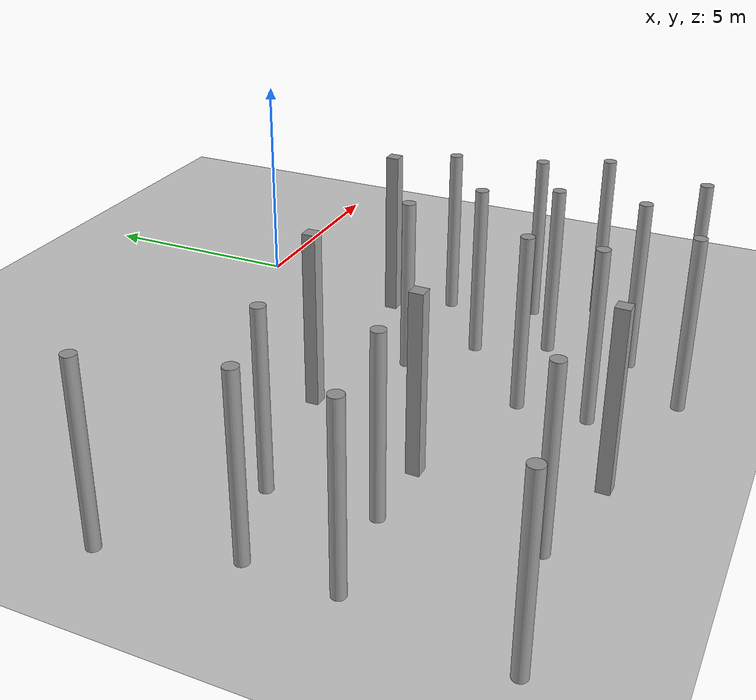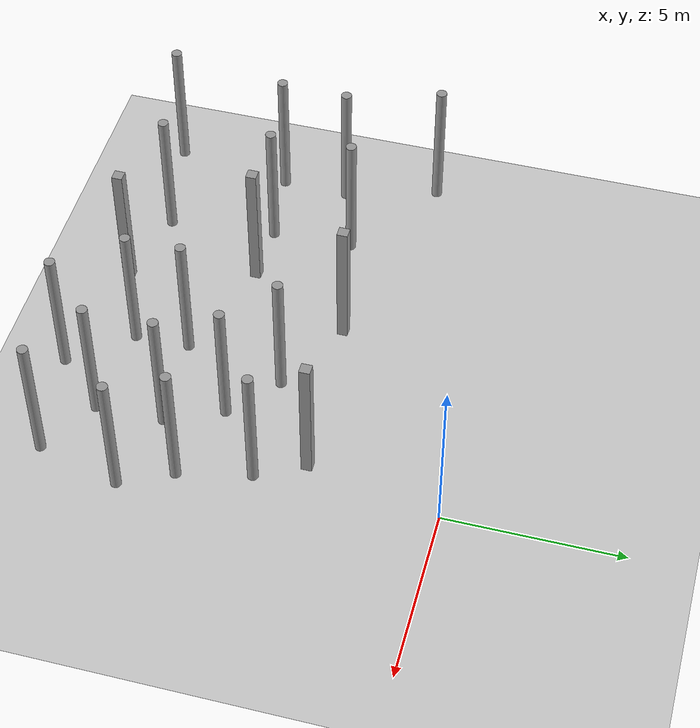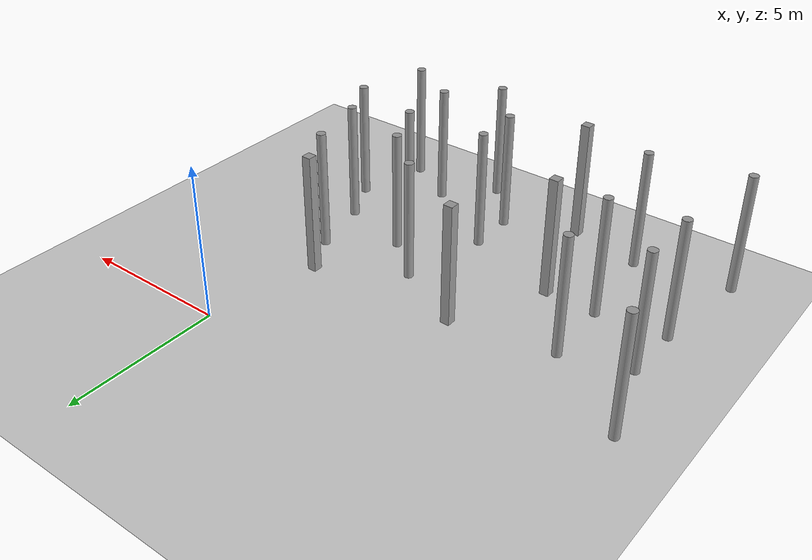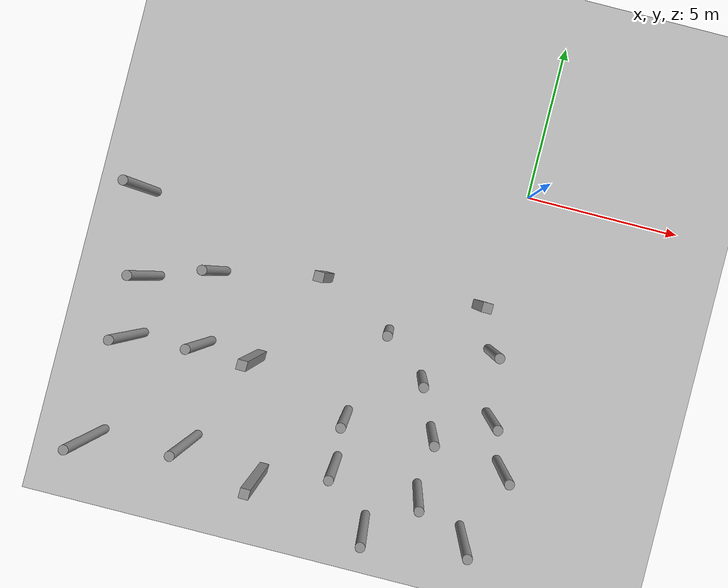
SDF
<sdf version="1.6">
 <world name="default">
  <model name="ground_plane">
   <static>1</static>
   <link name="link">
    <collision name="collision">
     <geometry><plane><normal>0 0 1</normal><size>100 100</size></plane></geometry>
    </collision>
    <visual name="visual">
     <cast_shadows>0</cast_shadows>
     <geometry><plane><normal>0 0 1</normal><size>100 100</size></plane></geometry>
     <material>
      <script><uri>file://media/materials/scripts/gazebo.material</uri><name>Gazebo/Gray</name></script>
     </material>
    </visual>
   </link>
  </model>
  <model name="unit_cylinder_clone_1_clone">
   <link name="link">
    <inertial>
     <mass>1000</mass>
     <inertia><ixx>145.833</ixx><ixy>0</ixy><ixz>0</ixz><iyy>145.833</iyy><iyz>0</iyz><izz>125</izz></inertia>
    </inertial>
    <visual name="visual">
     <geometry><cylinder><radius>0.15</radius><length>4</length></cylinder></geometry>
     <material>
      <script><name>Gazebo/Grey</name><uri>file://media/materials/scripts/gazebo.material</uri></script>
      <shader type="vertex"><normal_map>__default__</normal_map></shader>
      <ambient>0.3 0.3 0.3 1</ambient>
      <diffuse>0.7 0.7 0.7 1</diffuse>
      <specular>0.01 0.01 0.01 1</specular>
      <emissive>0 0 0 1</emissive>
     </material>
    </visual>
    <collision name="collision">
     <geometry><cylinder><radius>0.15</radius><length>4</length></cylinder></geometry>
     <surface>
      <friction>
       <ode><mu>1</mu><mu2>1</mu2><fdir1>0 0 0</fdir1><slip1>0</slip1><slip2>0</slip2></ode>
       <torsional>
        <coefficient>1</coefficient>
        <patch_radius>0</patch_radius>
        <surface_radius>0</surface_radius>
        <use_patch_radius>1</use_patch_radius>
        <ode><slip>0</slip></ode>
       </torsional>
      </friction>
      <bounce><restitution_coefficient>0</restitution_coefficient><threshold>1e+06</threshold></bounce>
      <contact>
       <collide_without_contact>0</collide_without_contact>
       <collide_without_contact_bitmask>1</collide_without_contact_bitmask>
       <collide_bitmask>1</collide_bitmask>
       <ode>
        <soft_cfm>0</soft_cfm>
        <soft_erp>0.2</soft_erp>
        <kp>1e+13</kp>
        <kd>1</kd>
        <max_vel>0.01</max_vel>
        <min_depth>0</min_depth>
       </ode>
       <bullet>
        <split_impulse>1</split_impulse>
        <split_impulse_penetration_threshold>-0.01</split_impulse_penetration_threshold>
        <soft_cfm>0</soft_cfm>
        <soft_erp>0.2</soft_erp>
        <kp>1e+13</kp>
        <kd>1</kd>
       </bullet>
      </contact>
     </surface>
    </collision>
   </link>
   <static>0</static>
   <pose>-1.25133 -8.0211 1.99995 -0.000273 3e-06 -0.782921</pose>
  </model>
  <model name="unit_cylinder_clone_1_clone_1">
   <link name="link">
    <inertial>
     <mass>1000</mass>
     <inertia><ixx>145.833</ixx><ixy>0</ixy><ixz>0</ixz><iyy>145.833</iyy><iyz>0</iyz><izz>125</izz></inertia>
    </inertial>
    <visual name="visual">
     <geometry><cylinder><radius>0.15</radius><length>4</length></cylinder></geometry>
     <material>
      <script><name>Gazebo/Grey</name><uri>file://media/materials/scripts/gazebo.material</uri></script>
      <shader type="vertex"><normal_map>__default__</normal_map></shader>
      <ambient>0.3 0.3 0.3 1</ambient>
      <diffuse>0.7 0.7 0.7 1</diffuse>
      <specular>0.01 0.01 0.01 1</specular>
      <emissive>0 0 0 1</emissive>
     </material>
    </visual>
    <collision name="collision">
     <geometry><cylinder><radius>0.15</radius><length>4</length></cylinder></geometry>
     <surface>
      <friction>
       <ode><mu>1</mu><mu2>1</mu2><fdir1>0 0 0</fdir1><slip1>0</slip1><slip2>0</slip2></ode>
       <torsional>
        <coefficient>1</coefficient>
        <patch_radius>0</patch_radius>
        <surface_radius>0</surface_radius>
        <use_patch_radius>1</use_patch_radius>
        <ode><slip>0</slip></ode>
       </torsional>
      </friction>
      <bounce><restitution_coefficient>0</restitution_coefficient><threshold>1e+06</threshold></bounce>
      <contact>
       <collide_without_contact>0</collide_without_contact>
       <collide_without_contact_bitmask>1</collide_without_contact_bitmask>
       <collide_bitmask>1</collide_bitmask>
       <ode>
        <soft_cfm>0</soft_cfm>
        <soft_erp>0.2</soft_erp>
        <kp>1e+13</kp>
        <kd>1</kd>
        <max_vel>0.01</max_vel>
        <min_depth>0</min_depth>
       </ode>
       <bullet>
        <split_impulse>1</split_impulse>
        <split_impulse_penetration_threshold>-0.01</split_impulse_penetration_threshold>
        <soft_cfm>0</soft_cfm>
        <soft_erp>0.2</soft_erp>
        <kp>1e+13</kp>
        <kd>1</kd>
       </bullet>
      </contact>
     </surface>
    </collision>
   </link>
   <static>0</static>
   <pose>-11.8278 -2.81611 1.99995 -0.000273 1e-06 -0.789222</pose>
  </model>
  <model name="unit_cylinder_clone_1_clone_4">
   <link name="link">
    <inertial>
     <mass>1000</mass>
     <inertia><ixx>145.833</ixx><ixy>0</ixy><ixz>0</ixz><iyy>145.833</iyy><iyz>0</iyz><izz>125</izz></inertia>
    </inertial>
    <visual name="visual">
     <geometry><cylinder><radius>0.15</radius><length>4</length></cylinder></geometry>
     <material>
      <script><name>Gazebo/Grey</name><uri>file://media/materials/scripts/gazebo.material</uri></script>
      <shader type="vertex"><normal_map>__default__</normal_map></shader>
      <ambient>0.3 0.3 0.3 1</ambient>
      <diffuse>0.7 0.7 0.7 1</diffuse>
      <specular>0.01 0.01 0.01 1</specular>
      <emissive>0 0 0 1</emissive>
     </material>
    </visual>
    <collision name="collision">
     <geometry><cylinder><radius>0.15</radius><length>4</length></cylinder></geometry>
     <surface>
      <friction>
       <ode><mu>1</mu><mu2>1</mu2><fdir1>0 0 0</fdir1><slip1>0</slip1><slip2>0</slip2></ode>
       <torsional>
        <coefficient>1</coefficient>
        <patch_radius>0</patch_radius>
        <surface_radius>0</surface_radius>
        <use_patch_radius>1</use_patch_radius>
        <ode><slip>0</slip></ode>
       </torsional>
      </friction>
      <bounce><restitution_coefficient>0</restitution_coefficient><threshold>1e+06</threshold></bounce>
      <contact>
       <collide_without_contact>0</collide_without_contact>
       <collide_without_contact_bitmask>1</collide_without_contact_bitmask>
       <collide_bitmask>1</collide_bitmask>
       <ode>
        <soft_cfm>0</soft_cfm>
        <soft_erp>0.2</soft_erp>
        <kp>1e+13</kp>
        <kd>1</kd>
        <max_vel>0.01</max_vel>
        <min_depth>0</min_depth>
       </ode>
       <bullet>
        <split_impulse>1</split_impulse>
        <split_impulse_penetration_threshold>-0.01</split_impulse_penetration_threshold>
        <soft_cfm>0</soft_cfm>
        <soft_erp>0.2</soft_erp>
        <kp>1e+13</kp>
        <kd>1</kd>
       </bullet>
      </contact>
     </surface>
    </collision>
   </link>
   <static>0</static>
   <pose>-8.98337 -4.76712 1.99995 -0.000273 1e-06 -0.791185</pose>
  </model>
  <model name="unit_cylinder_clone_1_clone_6">
   <link name="link">
    <inertial>
     <mass>1000</mass>
     <inertia><ixx>145.833</ixx><ixy>0</ixy><ixz>0</ixz><iyy>145.833</iyy><iyz>0</iyz><izz>125</izz></inertia>
    </inertial>
    <visual name="visual">
     <geometry><cylinder><radius>0.15</radius><length>4</length></cylinder></geometry>
     <material>
      <script><name>Gazebo/Grey</name><uri>file://media/materials/scripts/gazebo.material</uri></script>
      <shader type="vertex"><normal_map>__default__</normal_map></shader>
      <ambient>0.3 0.3 0.3 1</ambient>
      <diffuse>0.7 0.7 0.7 1</diffuse>
      <specular>0.01 0.01 0.01 1</specular>
      <emissive>0 0 0 1</emissive>
     </material>
    </visual>
    <collision name="collision">
     <geometry><cylinder><radius>0.15</radius><length>4</length></cylinder></geometry>
     <surface>
      <friction>
       <ode><mu>1</mu><mu2>1</mu2><fdir1>0 0 0</fdir1><slip1>0</slip1><slip2>0</slip2></ode>
       <torsional>
        <coefficient>1</coefficient>
        <patch_radius>0</patch_radius>
        <surface_radius>0</surface_radius>
        <use_patch_radius>1</use_patch_radius>
        <ode><slip>0</slip></ode>
       </torsional>
      </friction>
      <bounce><restitution_coefficient>0</restitution_coefficient><threshold>1e+06</threshold></bounce>
      <contact>
       <collide_without_contact>0</collide_without_contact>
       <collide_without_contact_bitmask>1</collide_without_contact_bitmask>
       <collide_bitmask>1</collide_bitmask>
       <ode>
        <soft_cfm>0</soft_cfm>
        <soft_erp>0.2</soft_erp>
        <kp>1e+13</kp>
        <kd>1</kd>
        <max_vel>0.01</max_vel>
        <min_depth>0</min_depth>
       </ode>
       <bullet>
        <split_impulse>1</split_impulse>
        <split_impulse_penetration_threshold>-0.01</split_impulse_penetration_threshold>
        <soft_cfm>0</soft_cfm>
        <soft_erp>0.2</soft_erp>
        <kp>1e+13</kp>
        <kd>1</kd>
       </bullet>
      </contact>
     </surface>
    </collision>
   </link>
   <static>0</static>
   <pose>-3.34529 -5.28367 1.99998 -1e-06 -0 -0.187092</pose>
  </model>
  <model name="unit_cylinder_clone_1_clone_10">
   <link name="link">
    <inertial>
     <mass>1000</mass>
     <inertia><ixx>145.833</ixx><ixy>0</ixy><ixz>0</ixz><iyy>145.833</iyy><iyz>0</iyz><izz>125</izz></inertia>
    </inertial>
    <visual name="visual">
     <geometry><cylinder><radius>0.15</radius><length>4</length></cylinder></geometry>
     <material>
      <script><name>Gazebo/Grey</name><uri>file://media/materials/scripts/gazebo.material</uri></script>
      <shader type="vertex"><normal_map>__default__</normal_map></shader>
      <ambient>0.3 0.3 0.3 1</ambient>
      <diffuse>0.7 0.7 0.7 1</diffuse>
      <specular>0.01 0.01 0.01 1</specular>
      <emissive>0 0 0 1</emissive>
     </material>
    </visual>
    <collision name="collision">
     <geometry><cylinder><radius>0.15</radius><length>4</length></cylinder></geometry>
     <surface>
      <friction>
       <ode><mu>1</mu><mu2>1</mu2><fdir1>0 0 0</fdir1><slip1>0</slip1><slip2>0</slip2></ode>
       <torsional>
        <coefficient>1</coefficient>
        <patch_radius>0</patch_radius>
        <surface_radius>0</surface_radius>
        <use_patch_radius>1</use_patch_radius>
        <ode><slip>0</slip></ode>
       </torsional>
      </friction>
      <bounce><restitution_coefficient>0</restitution_coefficient><threshold>1e+06</threshold></bounce>
      <contact>
       <collide_without_contact>0</collide_without_contact>
       <collide_without_contact_bitmask>1</collide_without_contact_bitmask>
       <collide_bitmask>1</collide_bitmask>
       <ode>
        <soft_cfm>0</soft_cfm>
        <soft_erp>0.2</soft_erp>
        <kp>1e+13</kp>
        <kd>1</kd>
        <max_vel>0.01</max_vel>
        <min_depth>0</min_depth>
       </ode>
       <bullet>
        <split_impulse>1</split_impulse>
        <split_impulse_penetration_threshold>-0.01</split_impulse_penetration_threshold>
        <soft_cfm>0</soft_cfm>
        <soft_erp>0.2</soft_erp>
        <kp>1e+13</kp>
        <kd>1</kd>
       </bullet>
      </contact>
     </surface>
    </collision>
   </link>
   <static>0</static>
   <pose>-0.052579 -5.11156 1.99998 -1e-06 -0 -0.161195</pose>
  </model>
  <model name="unit_cylinder_clone_1_clone_15">
   <link name="link">
    <inertial>
     <mass>1000</mass>
     <inertia><ixx>145.833</ixx><ixy>0</ixy><ixz>0</ixz><iyy>145.833</iyy><iyz>0</iyz><izz>125</izz></inertia>
    </inertial>
    <visual name="visual">
     <geometry><cylinder><radius>0.15</radius><length>4</length></cylinder></geometry>
     <material>
      <script><name>Gazebo/Grey</name><uri>file://media/materials/scripts/gazebo.material</uri></script>
      <shader type="vertex"><normal_map>__default__</normal_map></shader>
      <ambient>0.3 0.3 0.3 1</ambient>
      <diffuse>0.7 0.7 0.7 1</diffuse>
      <specular>0.01 0.01 0.01 1</specular>
      <emissive>0 0 0 1</emissive>
     </material>
    </visual>
    <collision name="collision">
     <geometry><cylinder><radius>0.15</radius><length>4</length></cylinder></geometry>
     <surface>
      <friction>
       <ode><mu>1</mu><mu2>1</mu2><fdir1>0 0 0</fdir1><slip1>0</slip1><slip2>0</slip2></ode>
       <torsional>
        <coefficient>1</coefficient>
        <patch_radius>0</patch_radius>
        <surface_radius>0</surface_radius>
        <use_patch_radius>1</use_patch_radius>
        <ode><slip>0</slip></ode>
       </torsional>
      </friction>
      <bounce><restitution_coefficient>0</restitution_coefficient><threshold>1e+06</threshold></bounce>
      <contact>
       <collide_without_contact>0</collide_without_contact>
       <collide_without_contact_bitmask>1</collide_without_contact_bitmask>
       <collide_bitmask>1</collide_bitmask>
       <ode>
        <soft_cfm>0</soft_cfm>
        <soft_erp>0.2</soft_erp>
        <kp>1e+13</kp>
        <kd>1</kd>
        <max_vel>0.01</max_vel>
        <min_depth>0</min_depth>
       </ode>
       <bullet>
        <split_impulse>1</split_impulse>
        <split_impulse_penetration_threshold>-0.01</split_impulse_penetration_threshold>
        <soft_cfm>0</soft_cfm>
        <soft_erp>0.2</soft_erp>
        <kp>1e+13</kp>
        <kd>1</kd>
       </bullet>
      </contact>
     </surface>
    </collision>
   </link>
   <static>0</static>
   <pose>-11.0913 -7.37751 1.99995 -0.000273 2e-06 -0.786393</pose>
  </model>
  <model name="unit_cylinder_clone_1_clone_16">
   <link name="link">
    <inertial>
     <mass>1000</mass>
     <inertia><ixx>145.833</ixx><ixy>0</ixy><ixz>0</ixz><iyy>145.833</iyy><iyz>0</iyz><izz>125</izz></inertia>
    </inertial>
    <visual name="visual">
     <geometry><cylinder><radius>0.15</radius><length>4</length></cylinder></geometry>
     <material>
      <script><name>Gazebo/Grey</name><uri>file://media/materials/scripts/gazebo.material</uri></script>
      <shader type="vertex"><normal_map>__default__</normal_map></shader>
      <ambient>0.3 0.3 0.3 1</ambient>
      <diffuse>0.7 0.7 0.7 1</diffuse>
      <specular>0.01 0.01 0.01 1</specular>
      <emissive>0 0 0 1</emissive>
     </material>
    </visual>
    <collision name="collision">
     <geometry><cylinder><radius>0.15</radius><length>4</length></cylinder></geometry>
     <surface>
      <friction>
       <ode><mu>1</mu><mu2>1</mu2><fdir1>0 0 0</fdir1><slip1>0</slip1><slip2>0</slip2></ode>
       <torsional>
        <coefficient>1</coefficient>
        <patch_radius>0</patch_radius>
        <surface_radius>0</surface_radius>
        <use_patch_radius>1</use_patch_radius>
        <ode><slip>0</slip></ode>
       </torsional>
      </friction>
      <bounce><restitution_coefficient>0</restitution_coefficient><threshold>1e+06</threshold></bounce>
      <contact>
       <collide_without_contact>0</collide_without_contact>
       <collide_without_contact_bitmask>1</collide_without_contact_bitmask>
       <collide_bitmask>1</collide_bitmask>
       <ode>
        <soft_cfm>0</soft_cfm>
        <soft_erp>0.2</soft_erp>
        <kp>1e+13</kp>
        <kd>1</kd>
        <max_vel>0.01</max_vel>
        <min_depth>0</min_depth>
       </ode>
       <bullet>
        <split_impulse>1</split_impulse>
        <split_impulse_penetration_threshold>-0.01</split_impulse_penetration_threshold>
        <soft_cfm>0</soft_cfm>
        <soft_erp>0.2</soft_erp>
        <kp>1e+13</kp>
        <kd>1</kd>
       </bullet>
      </contact>
     </surface>
    </collision>
   </link>
   <static>0</static>
   <pose>-1.96564 -6.46035 1.99995 -0.000273 2e-06 -0.788121</pose>
  </model>
  <model name="unit_cylinder_clone_1_clone_17">
   <link name="link">
    <inertial>
     <mass>1000</mass>
     <inertia><ixx>145.833</ixx><ixy>0</ixy><ixz>0</ixz><iyy>145.833</iyy><iyz>0</iyz><izz>125</izz></inertia>
    </inertial>
    <visual name="visual">
     <geometry><cylinder><radius>0.15</radius><length>4</length></cylinder></geometry>
     <material>
      <script><name>Gazebo/Grey</name><uri>file://media/materials/scripts/gazebo.material</uri></script>
      <shader type="vertex"><normal_map>__default__</normal_map></shader>
      <ambient>0.3 0.3 0.3 1</ambient>
      <diffuse>0.7 0.7 0.7 1</diffuse>
      <specular>0.01 0.01 0.01 1</specular>
      <emissive>0 0 0 1</emissive>
     </material>
    </visual>
    <collision name="collision">
     <geometry><cylinder><radius>0.15</radius><length>4</length></cylinder></geometry>
     <surface>
      <friction>
       <ode><mu>1</mu><mu2>1</mu2><fdir1>0 0 0</fdir1><slip1>0</slip1><slip2>0</slip2></ode>
       <torsional>
        <coefficient>1</coefficient>
        <patch_radius>0</patch_radius>
        <surface_radius>0</surface_radius>
        <use_patch_radius>1</use_patch_radius>
        <ode><slip>0</slip></ode>
       </torsional>
      </friction>
      <bounce><restitution_coefficient>0</restitution_coefficient><threshold>1e+06</threshold></bounce>
      <contact>
       <collide_without_contact>0</collide_without_contact>
       <collide_without_contact_bitmask>1</collide_without_contact_bitmask>
       <collide_bitmask>1</collide_bitmask>
       <ode>
        <soft_cfm>0</soft_cfm>
        <soft_erp>0.2</soft_erp>
        <kp>1e+13</kp>
        <kd>1</kd>
        <max_vel>0.01</max_vel>
        <min_depth>0</min_depth>
       </ode>
       <bullet>
        <split_impulse>1</split_impulse>
        <split_impulse_penetration_threshold>-0.01</split_impulse_penetration_threshold>
        <soft_cfm>0</soft_cfm>
        <soft_erp>0.2</soft_erp>
        <kp>1e+13</kp>
        <kd>1</kd>
       </bullet>
      </contact>
     </surface>
    </collision>
   </link>
   <static>0</static>
   <pose>-1.21726 -9.94741 1.99995 -0.000273 2e-06 -0.788152</pose>
  </model>
  <model name="unit_cylinder_clone_1_clone_18">
   <link name="link">
    <inertial>
     <mass>1000</mass>
     <inertia><ixx>145.833</ixx><ixy>0</ixy><ixz>0</ixz><iyy>145.833</iyy><iyz>0</iyz><izz>125</izz></inertia>
    </inertial>
    <visual name="visual">
     <geometry><cylinder><radius>0.15</radius><length>4</length></cylinder></geometry>
     <material>
      <script><name>Gazebo/Grey</name><uri>file://media/materials/scripts/gazebo.material</uri></script>
      <shader type="vertex"><normal_map>__default__</normal_map></shader>
      <ambient>0.3 0.3 0.3 1</ambient>
      <diffuse>0.7 0.7 0.7 1</diffuse>
      <specular>0.01 0.01 0.01 1</specular>
      <emissive>0 0 0 1</emissive>
     </material>
    </visual>
    <collision name="collision">
     <geometry><cylinder><radius>0.15</radius><length>4</length></cylinder></geometry>
     <surface>
      <friction>
       <ode><mu>1</mu><mu2>1</mu2><fdir1>0 0 0</fdir1><slip1>0</slip1><slip2>0</slip2></ode>
       <torsional>
        <coefficient>1</coefficient>
        <patch_radius>0</patch_radius>
        <surface_radius>0</surface_radius>
        <use_patch_radius>1</use_patch_radius>
        <ode><slip>0</slip></ode>
       </torsional>
      </friction>
      <bounce><restitution_coefficient>0</restitution_coefficient><threshold>1e+06</threshold></bounce>
      <contact>
       <collide_without_contact>0</collide_without_contact>
       <collide_without_contact_bitmask>1</collide_without_contact_bitmask>
       <collide_bitmask>1</collide_bitmask>
       <ode>
        <soft_cfm>0</soft_cfm>
        <soft_erp>0.2</soft_erp>
        <kp>1e+13</kp>
        <kd>1</kd>
        <max_vel>0.01</max_vel>
        <min_depth>0</min_depth>
       </ode>
       <bullet>
        <split_impulse>1</split_impulse>
        <split_impulse_penetration_threshold>-0.01</split_impulse_penetration_threshold>
        <soft_cfm>0</soft_cfm>
        <soft_erp>0.2</soft_erp>
        <kp>1e+13</kp>
        <kd>1</kd>
       </bullet>
      </contact>
     </surface>
    </collision>
   </link>
   <static>0</static>
   <pose>-11.5625 -10.7603 1.99995 -0.000273 1e-06 -0.790079</pose>
  </model>
  <model name="unit_cylinder_clone_1_clone_19">
   <link name="link">
    <inertial>
     <mass>1000</mass>
     <inertia><ixx>145.833</ixx><ixy>0</ixy><ixz>0</ixz><iyy>145.833</iyy><iyz>0</iyz><izz>125</izz></inertia>
    </inertial>
    <visual name="visual">
     <geometry><cylinder><radius>0.15</radius><length>4</length></cylinder></geometry>
     <material>
      <script><name>Gazebo/Grey</name><uri>file://media/materials/scripts/gazebo.material</uri></script>
      <shader type="vertex"><normal_map>__default__</normal_map></shader>
      <ambient>0.3 0.3 0.3 1</ambient>
      <diffuse>0.7 0.7 0.7 1</diffuse>
      <specular>0.01 0.01 0.01 1</specular>
      <emissive>0 0 0 1</emissive>
     </material>
    </visual>
    <collision name="collision">
     <geometry><cylinder><radius>0.15</radius><length>4</length></cylinder></geometry>
     <surface>
      <friction>
       <ode><mu>1</mu><mu2>1</mu2><fdir1>0 0 0</fdir1><slip1>0</slip1><slip2>0</slip2></ode>
       <torsional>
        <coefficient>1</coefficient>
        <patch_radius>0</patch_radius>
        <surface_radius>0</surface_radius>
        <use_patch_radius>1</use_patch_radius>
        <ode><slip>0</slip></ode>
       </torsional>
      </friction>
      <bounce><restitution_coefficient>0</restitution_coefficient><threshold>1e+06</threshold></bounce>
      <contact>
       <collide_without_contact>0</collide_without_contact>
       <collide_without_contact_bitmask>1</collide_without_contact_bitmask>
       <collide_bitmask>1</collide_bitmask>
       <ode>
        <soft_cfm>0</soft_cfm>
        <soft_erp>0.2</soft_erp>
        <kp>1e+13</kp>
        <kd>1</kd>
        <max_vel>0.01</max_vel>
        <min_depth>0</min_depth>
       </ode>
       <bullet>
        <split_impulse>1</split_impulse>
        <split_impulse_penetration_threshold>-0.01</split_impulse_penetration_threshold>
        <soft_cfm>0</soft_cfm>
        <soft_erp>0.2</soft_erp>
        <kp>1e+13</kp>
        <kd>1</kd>
       </bullet>
      </contact>
     </surface>
    </collision>
   </link>
   <static>0</static>
   <pose>1.11239 -8.55759 1.99995 -0.000273 2e-06 -0.787119</pose>
  </model>
  <model name="unit_cylinder_clone_1_clone_20">
   <link name="link">
    <inertial>
     <mass>1000</mass>
     <inertia><ixx>145.833</ixx><ixy>0</ixy><ixz>0</ixz><iyy>145.833</iyy><iyz>0</iyz><izz>125</izz></inertia>
    </inertial>
    <visual name="visual">
     <geometry><cylinder><radius>0.15</radius><length>4</length></cylinder></geometry>
     <material>
      <script><name>Gazebo/Grey</name><uri>file://media/materials/scripts/gazebo.material</uri></script>
      <shader type="vertex"><normal_map>__default__</normal_map></shader>
      <ambient>0.3 0.3 0.3 1</ambient>
      <diffuse>0.7 0.7 0.7 1</diffuse>
      <specular>0.01 0.01 0.01 1</specular>
      <emissive>0 0 0 1</emissive>
     </material>
    </visual>
    <collision name="collision">
     <geometry><cylinder><radius>0.15</radius><length>4</length></cylinder></geometry>
     <surface>
      <friction>
       <ode><mu>1</mu><mu2>1</mu2><fdir1>0 0 0</fdir1><slip1>0</slip1><slip2>0</slip2></ode>
       <torsional>
        <coefficient>1</coefficient>
        <patch_radius>0</patch_radius>
        <surface_radius>0</surface_radius>
        <use_patch_radius>1</use_patch_radius>
        <ode><slip>0</slip></ode>
       </torsional>
      </friction>
      <bounce><restitution_coefficient>0</restitution_coefficient><threshold>1e+06</threshold></bounce>
      <contact>
       <collide_without_contact>0</collide_without_contact>
       <collide_without_contact_bitmask>1</collide_without_contact_bitmask>
       <collide_bitmask>1</collide_bitmask>
       <ode>
        <soft_cfm>0</soft_cfm>
        <soft_erp>0.2</soft_erp>
        <kp>1e+13</kp>
        <kd>1</kd>
        <max_vel>0.01</max_vel>
        <min_depth>0</min_depth>
       </ode>
       <bullet>
        <split_impulse>1</split_impulse>
        <split_impulse_penetration_threshold>-0.01</split_impulse_penetration_threshold>
        <soft_cfm>0</soft_cfm>
        <soft_erp>0.2</soft_erp>
        <kp>1e+13</kp>
        <kd>1</kd>
       </bullet>
      </contact>
     </surface>
    </collision>
   </link>
   <static>0</static>
   <pose>0.405452 -7.12777 1.99995 -0.000273 1e-06 -0.78869</pose>
  </model>
  <model name="unit_cylinder_clone_1_clone_21">
   <link name="link">
    <inertial>
     <mass>1000</mass>
     <inertia><ixx>145.833</ixx><ixy>0</ixy><ixz>0</ixz><iyy>145.833</iyy><iyz>0</iyz><izz>125</izz></inertia>
    </inertial>
    <visual name="visual">
     <geometry><cylinder><radius>0.15</radius><length>4</length></cylinder></geometry>
     <material>
      <script><name>Gazebo/Grey</name><uri>file://media/materials/scripts/gazebo.material</uri></script>
      <shader type="vertex"><normal_map>__default__</normal_map></shader>
      <ambient>0.3 0.3 0.3 1</ambient>
      <diffuse>0.7 0.7 0.7 1</diffuse>
      <specular>0.01 0.01 0.01 1</specular>
      <emissive>0 0 0 1</emissive>
     </material>
    </visual>
    <collision name="collision">
     <geometry><cylinder><radius>0.15</radius><length>4</length></cylinder></geometry>
     <surface>
      <friction>
       <ode><mu>1</mu><mu2>1</mu2><fdir1>0 0 0</fdir1><slip1>0</slip1><slip2>0</slip2></ode>
       <torsional>
        <coefficient>1</coefficient>
        <patch_radius>0</patch_radius>
        <surface_radius>0</surface_radius>
        <use_patch_radius>1</use_patch_radius>
        <ode><slip>0</slip></ode>
       </torsional>
      </friction>
      <bounce><restitution_coefficient>0</restitution_coefficient><threshold>1e+06</threshold></bounce>
      <contact>
       <collide_without_contact>0</collide_without_contact>
       <collide_without_contact_bitmask>1</collide_without_contact_bitmask>
       <collide_bitmask>1</collide_bitmask>
       <ode>
        <soft_cfm>0</soft_cfm>
        <soft_erp>0.2</soft_erp>
        <kp>1e+13</kp>
        <kd>1</kd>
        <max_vel>0.01</max_vel>
        <min_depth>0</min_depth>
       </ode>
       <bullet>
        <split_impulse>1</split_impulse>
        <split_impulse_penetration_threshold>-0.01</split_impulse_penetration_threshold>
        <soft_cfm>0</soft_cfm>
        <soft_erp>0.2</soft_erp>
        <kp>1e+13</kp>
        <kd>1</kd>
       </bullet>
      </contact>
     </surface>
    </collision>
   </link>
   <static>0</static>
   <pose>0.47207 -10.9339 1.99995 -0.000273 2e-06 -0.784849</pose>
  </model>
  <model name="unit_cylinder_clone_1_clone_25">
   <link name="link">
    <inertial>
     <mass>1000</mass>
     <inertia><ixx>145.833</ixx><ixy>0</ixy><ixz>0</ixz><iyy>145.833</iyy><iyz>0</iyz><izz>125</izz></inertia>
    </inertial>
    <visual name="visual">
     <geometry><cylinder><radius>0.15</radius><length>4</length></cylinder></geometry>
     <material>
      <script><name>Gazebo/Grey</name><uri>file://media/materials/scripts/gazebo.material</uri></script>
      <shader type="vertex"><normal_map>__default__</normal_map></shader>
      <ambient>0.3 0.3 0.3 1</ambient>
      <diffuse>0.7 0.7 0.7 1</diffuse>
      <specular>0.01 0.01 0.01 1</specular>
      <emissive>0 0 0 1</emissive>
     </material>
    </visual>
    <collision name="collision">
     <geometry><cylinder><radius>0.15</radius><length>4</length></cylinder></geometry>
     <surface>
      <friction>
       <ode><mu>1</mu><mu2>1</mu2><fdir1>0 0 0</fdir1><slip1>0</slip1><slip2>0</slip2></ode>
       <torsional>
        <coefficient>1</coefficient>
        <patch_radius>0</patch_radius>
        <surface_radius>0</surface_radius>
        <use_patch_radius>1</use_patch_radius>
        <ode><slip>0</slip></ode>
       </torsional>
      </friction>
      <bounce><restitution_coefficient>0</restitution_coefficient><threshold>1e+06</threshold></bounce>
      <contact>
       <collide_without_contact>0</collide_without_contact>
       <collide_without_contact_bitmask>1</collide_without_contact_bitmask>
       <collide_bitmask>1</collide_bitmask>
       <ode>
        <soft_cfm>0</soft_cfm>
        <soft_erp>0.2</soft_erp>
        <kp>1e+13</kp>
        <kd>1</kd>
        <max_vel>0.01</max_vel>
        <min_depth>0</min_depth>
       </ode>
       <bullet>
        <split_impulse>1</split_impulse>
        <split_impulse_penetration_threshold>-0.01</split_impulse_penetration_threshold>
        <soft_cfm>0</soft_cfm>
        <soft_erp>0.2</soft_erp>
        <kp>1e+13</kp>
        <kd>1</kd>
       </bullet>
      </contact>
     </surface>
    </collision>
   </link>
   <static>0</static>
   <pose>-11.0409 -5.448 1.99995 -0.000273 1e-06 -0.791175</pose>
  </model>
  <model name="unit_cylinder_clone_1_clone_26">
   <link name="link">
    <inertial>
     <mass>1000</mass>
     <inertia><ixx>145.833</ixx><ixy>0</ixy><ixz>0</ixz><iyy>145.833</iyy><iyz>0</iyz><izz>125</izz></inertia>
    </inertial>
    <visual name="visual">
     <geometry><cylinder><radius>0.15</radius><length>4</length></cylinder></geometry>
     <material>
      <script><name>Gazebo/Grey</name><uri>file://media/materials/scripts/gazebo.material</uri></script>
      <shader type="vertex"><normal_map>__default__</normal_map></shader>
      <ambient>0.3 0.3 0.3 1</ambient>
      <diffuse>0.7 0.7 0.7 1</diffuse>
      <specular>0.01 0.01 0.01 1</specular>
      <emissive>0 0 0 1</emissive>
     </material>
    </visual>
    <collision name="collision">
     <geometry><cylinder><radius>0.15</radius><length>4</length></cylinder></geometry>
     <surface>
      <friction>
       <ode><mu>1</mu><mu2>1</mu2><fdir1>0 0 0</fdir1><slip1>0</slip1><slip2>0</slip2></ode>
       <torsional>
        <coefficient>1</coefficient>
        <patch_radius>0</patch_radius>
        <surface_radius>0</surface_radius>
        <use_patch_radius>1</use_patch_radius>
        <ode><slip>0</slip></ode>
       </torsional>
      </friction>
      <bounce><restitution_coefficient>0</restitution_coefficient><threshold>1e+06</threshold></bounce>
      <contact>
       <collide_without_contact>0</collide_without_contact>
       <collide_without_contact_bitmask>1</collide_without_contact_bitmask>
       <collide_bitmask>1</collide_bitmask>
       <ode>
        <soft_cfm>0</soft_cfm>
        <soft_erp>0.2</soft_erp>
        <kp>1e+13</kp>
        <kd>1</kd>
        <max_vel>0.01</max_vel>
        <min_depth>0</min_depth>
       </ode>
       <bullet>
        <split_impulse>1</split_impulse>
        <split_impulse_penetration_threshold>-0.01</split_impulse_penetration_threshold>
        <soft_cfm>0</soft_cfm>
        <soft_erp>0.2</soft_erp>
        <kp>1e+13</kp>
        <kd>1</kd>
       </bullet>
      </contact>
     </surface>
    </collision>
   </link>
   <static>0</static>
   <pose>-3.95991 -9.7278 1.99995 -0.000273 1e-06 -0.790327</pose>
  </model>
  <model name="unit_cylinder_clone_1_clone_27">
   <link name="link">
    <inertial>
     <mass>1000</mass>
     <inertia><ixx>145.833</ixx><ixy>0</ixy><ixz>0</ixz><iyy>145.833</iyy><iyz>0</iyz><izz>125</izz></inertia>
    </inertial>
    <visual name="visual">
     <geometry><cylinder><radius>0.15</radius><length>4</length></cylinder></geometry>
     <material>
      <script><name>Gazebo/Grey</name><uri>file://media/materials/scripts/gazebo.material</uri></script>
      <shader type="vertex"><normal_map>__default__</normal_map></shader>
      <ambient>0.3 0.3 0.3 1</ambient>
      <diffuse>0.7 0.7 0.7 1</diffuse>
      <specular>0.01 0.01 0.01 1</specular>
      <emissive>0 0 0 1</emissive>
     </material>
    </visual>
    <collision name="collision">
     <geometry><cylinder><radius>0.15</radius><length>4</length></cylinder></geometry>
     <surface>
      <friction>
       <ode><mu>1</mu><mu2>1</mu2><fdir1>0 0 0</fdir1><slip1>0</slip1><slip2>0</slip2></ode>
       <torsional>
        <coefficient>1</coefficient>
        <patch_radius>0</patch_radius>
        <surface_radius>0</surface_radius>
        <use_patch_radius>1</use_patch_radius>
        <ode><slip>0</slip></ode>
       </torsional>
      </friction>
      <bounce><restitution_coefficient>0</restitution_coefficient><threshold>1e+06</threshold></bounce>
      <contact>
       <collide_without_contact>0</collide_without_contact>
       <collide_without_contact_bitmask>1</collide_without_contact_bitmask>
       <collide_bitmask>1</collide_bitmask>
       <ode>
        <soft_cfm>0</soft_cfm>
        <soft_erp>0.2</soft_erp>
        <kp>1e+13</kp>
        <kd>1</kd>
        <max_vel>0.01</max_vel>
        <min_depth>0</min_depth>
       </ode>
       <bullet>
        <split_impulse>1</split_impulse>
        <split_impulse_penetration_threshold>-0.01</split_impulse_penetration_threshold>
        <soft_cfm>0</soft_cfm>
        <soft_erp>0.2</soft_erp>
        <kp>1e+13</kp>
        <kd>1</kd>
       </bullet>
      </contact>
     </surface>
    </collision>
   </link>
   <static>0</static>
   <pose>-3.99444 -8.17825 1.99995 -0.000273 2e-06 -0.784882</pose>
  </model>
  <model name="unit_cylinder_clone_1_clone_28">
   <link name="link">
    <inertial>
     <mass>1000</mass>
     <inertia><ixx>145.833</ixx><ixy>0</ixy><ixz>0</ixz><iyy>145.833</iyy><iyz>0</iyz><izz>125</izz></inertia>
    </inertial>
    <visual name="visual">
     <geometry><cylinder><radius>0.15</radius><length>4</length></cylinder></geometry>
     <material>
      <script><name>Gazebo/Grey</name><uri>file://media/materials/scripts/gazebo.material</uri></script>
      <shader type="vertex"><normal_map>__default__</normal_map></shader>
      <ambient>0.3 0.3 0.3 1</ambient>
      <diffuse>0.7 0.7 0.7 1</diffuse>
      <specular>0.01 0.01 0.01 1</specular>
      <emissive>0 0 0 1</emissive>
     </material>
    </visual>
    <collision name="collision">
     <geometry><cylinder><radius>0.15</radius><length>4</length></cylinder></geometry>
     <surface>
      <friction>
       <ode><mu>1</mu><mu2>1</mu2><fdir1>0 0 0</fdir1><slip1>0</slip1><slip2>0</slip2></ode>
       <torsional>
        <coefficient>1</coefficient>
        <patch_radius>0</patch_radius>
        <surface_radius>0</surface_radius>
        <use_patch_radius>1</use_patch_radius>
        <ode><slip>0</slip></ode>
       </torsional>
      </friction>
      <bounce><restitution_coefficient>0</restitution_coefficient><threshold>1e+06</threshold></bounce>
      <contact>
       <collide_without_contact>0</collide_without_contact>
       <collide_without_contact_bitmask>1</collide_without_contact_bitmask>
       <collide_bitmask>1</collide_bitmask>
       <ode>
        <soft_cfm>0</soft_cfm>
        <soft_erp>0.2</soft_erp>
        <kp>1e+13</kp>
        <kd>1</kd>
        <max_vel>0.01</max_vel>
        <min_depth>0</min_depth>
       </ode>
       <bullet>
        <split_impulse>1</split_impulse>
        <split_impulse_penetration_threshold>-0.01</split_impulse_penetration_threshold>
        <soft_cfm>0</soft_cfm>
        <soft_erp>0.2</soft_erp>
        <kp>1e+13</kp>
        <kd>1</kd>
       </bullet>
      </contact>
     </surface>
    </collision>
   </link>
   <static>0</static>
   <pose>-2.60349 -11.3622 1.99995 -0.000273 1e-06 -0.791184</pose>
  </model>
  <model name="unit_cylinder_clone_1_clone_30">
   <link name="link">
    <inertial>
     <mass>1000</mass>
     <inertia><ixx>145.833</ixx><ixy>0</ixy><ixz>0</ixz><iyy>145.833</iyy><iyz>0</iyz><izz>125</izz></inertia>
    </inertial>
    <visual name="visual">
     <geometry><cylinder><radius>0.15</radius><length>4</length></cylinder></geometry>
     <material>
      <script><name>Gazebo/Grey</name><uri>file://media/materials/scripts/gazebo.material</uri></script>
      <shader type="vertex"><normal_map>__default__</normal_map></shader>
      <ambient>0.3 0.3 0.3 1</ambient>
      <diffuse>0.7 0.7 0.7 1</diffuse>
      <specular>0.01 0.01 0.01 1</specular>
      <emissive>0 0 0 1</emissive>
     </material>
    </visual>
    <collision name="collision">
     <geometry><cylinder><radius>0.15</radius><length>4</length></cylinder></geometry>
     <surface>
      <friction>
       <ode><mu>1</mu><mu2>1</mu2><fdir1>0 0 0</fdir1><slip1>0</slip1><slip2>0</slip2></ode>
       <torsional>
        <coefficient>1</coefficient>
        <patch_radius>0</patch_radius>
        <surface_radius>0</surface_radius>
        <use_patch_radius>1</use_patch_radius>
        <ode><slip>0</slip></ode>
       </torsional>
      </friction>
      <bounce><restitution_coefficient>0</restitution_coefficient><threshold>1e+06</threshold></bounce>
      <contact>
       <collide_without_contact>0</collide_without_contact>
       <collide_without_contact_bitmask>1</collide_without_contact_bitmask>
       <collide_bitmask>1</collide_bitmask>
       <ode>
        <soft_cfm>0</soft_cfm>
        <soft_erp>0.2</soft_erp>
        <kp>1e+13</kp>
        <kd>1</kd>
        <max_vel>0.01</max_vel>
        <min_depth>0</min_depth>
       </ode>
       <bullet>
        <split_impulse>1</split_impulse>
        <split_impulse_penetration_threshold>-0.01</split_impulse_penetration_threshold>
        <soft_cfm>0</soft_cfm>
        <soft_erp>0.2</soft_erp>
        <kp>1e+13</kp>
        <kd>1</kd>
       </bullet>
      </contact>
     </surface>
    </collision>
   </link>
   <static>0</static>
   <pose>-8.56709 -10.1821 1.99995 -0.000273 1e-06 -0.79117</pose>
  </model>
  <model name="unit_cylinder_clone_1_clone_31">
   <link name="link">
    <inertial>
     <mass>1000</mass>
     <inertia><ixx>145.833</ixx><ixy>0</ixy><ixz>0</ixz><iyy>145.833</iyy><iyz>0</iyz><izz>125</izz></inertia>
    </inertial>
    <visual name="visual">
     <geometry><cylinder><radius>0.15</radius><length>4</length></cylinder></geometry>
     <material>
      <script><name>Gazebo/Grey</name><uri>file://media/materials/scripts/gazebo.material</uri></script>
      <shader type="vertex"><normal_map>__default__</normal_map></shader>
      <ambient>0.3 0.3 0.3 1</ambient>
      <diffuse>0.7 0.7 0.7 1</diffuse>
      <specular>0.01 0.01 0.01 1</specular>
      <emissive>0 0 0 1</emissive>
     </material>
    </visual>
    <collision name="collision">
     <geometry><cylinder><radius>0.15</radius><length>4</length></cylinder></geometry>
     <surface>
      <friction>
       <ode><mu>1</mu><mu2>1</mu2><fdir1>0 0 0</fdir1><slip1>0</slip1><slip2>0</slip2></ode>
       <torsional>
        <coefficient>1</coefficient>
        <patch_radius>0</patch_radius>
        <surface_radius>0</surface_radius>
        <use_patch_radius>1</use_patch_radius>
        <ode><slip>0</slip></ode>
       </torsional>
      </friction>
      <bounce><restitution_coefficient>0</restitution_coefficient><threshold>1e+06</threshold></bounce>
      <contact>
       <collide_without_contact>0</collide_without_contact>
       <collide_without_contact_bitmask>1</collide_without_contact_bitmask>
       <collide_bitmask>1</collide_bitmask>
       <ode>
        <soft_cfm>0</soft_cfm>
        <soft_erp>0.2</soft_erp>
        <kp>1e+13</kp>
        <kd>1</kd>
        <max_vel>0.01</max_vel>
        <min_depth>0</min_depth>
       </ode>
       <bullet>
        <split_impulse>1</split_impulse>
        <split_impulse_penetration_threshold>-0.01</split_impulse_penetration_threshold>
        <soft_cfm>0</soft_cfm>
        <soft_erp>0.2</soft_erp>
        <kp>1e+13</kp>
        <kd>1</kd>
       </bullet>
      </contact>
     </surface>
    </collision>
   </link>
   <static>0</static>
   <pose>-8.88692 -7.0925 1.99995 -0.000273 3e-06 -0.782585</pose>
  </model>
  <model name="unit_box_clone_26_clone_6">
   <link name="link">
    <inertial>
     <mass>1000</mass>
     <inertia><ixx>166.667</ixx><ixy>0</ixy><ixz>0</ixz><iyy>166.667</iyy><iyz>0</iyz><izz>166.667</izz></inertia>
    </inertial>
    <visual name="visual">
     <geometry><box><size>0.3 0.3 4</size></box></geometry>
     <material>
      <script><name>Gazebo/Grey</name><uri>file://media/materials/scripts/gazebo.material</uri></script>
      <shader type="vertex"><normal_map>__default__</normal_map></shader>
      <ambient>0.3 0.3 0.3 1</ambient>
      <diffuse>0.7 0.7 0.7 1</diffuse>
      <specular>0.01 0.01 0.01 1</specular>
      <emissive>0 0 0 1</emissive>
     </material>
    </visual>
    <collision name="collision">
     <geometry><box><size>0.3 0.3 4</size></box></geometry>
     <surface>
      <friction>
       <ode><mu>1</mu><mu2>1</mu2><fdir1>0 0 0</fdir1><slip1>0</slip1><slip2>0</slip2></ode>
       <torsional>
        <coefficient>1</coefficient>
        <patch_radius>0</patch_radius>
        <surface_radius>0</surface_radius>
        <use_patch_radius>1</use_patch_radius>
        <ode><slip>0</slip></ode>
       </torsional>
      </friction>
      <bounce><restitution_coefficient>0</restitution_coefficient><threshold>1e+06</threshold></bounce>
      <contact>
       <collide_without_contact>0</collide_without_contact>
       <collide_without_contact_bitmask>1</collide_without_contact_bitmask>
       <collide_bitmask>1</collide_bitmask>
       <ode>
        <soft_cfm>0</soft_cfm>
        <soft_erp>0.2</soft_erp>
        <kp>1e+13</kp>
        <kd>1</kd>
        <max_vel>0.01</max_vel>
        <min_depth>0</min_depth>
       </ode>
       <bullet>
        <split_impulse>1</split_impulse>
        <split_impulse_penetration_threshold>-0.01</split_impulse_penetration_threshold>
        <soft_cfm>0</soft_cfm>
        <soft_erp>0.2</soft_erp>
        <kp>1e+13</kp>
        <kd>1</kd>
       </bullet>
      </contact>
     </surface>
    </collision>
   </link>
   <static>0</static>
   <pose>-0.759122 -3.79155 2 -0 -0 -0.004185</pose>
  </model>
  <model name="unit_box_clone_26_clone_9">
   <link name="link">
    <inertial>
     <mass>1000</mass>
     <inertia><ixx>166.667</ixx><ixy>0</ixy><ixz>0</ixz><iyy>166.667</iyy><iyz>0</iyz><izz>166.667</izz></inertia>
    </inertial>
    <visual name="visual">
     <geometry><box><size>0.3 0.3 4</size></box></geometry>
     <material>
      <script><name>Gazebo/Grey</name><uri>file://media/materials/scripts/gazebo.material</uri></script>
      <shader type="vertex"><normal_map>__default__</normal_map></shader>
      <ambient>0.3 0.3 0.3 1</ambient>
      <diffuse>0.7 0.7 0.7 1</diffuse>
      <specular>0.01 0.01 0.01 1</specular>
      <emissive>0 0 0 1</emissive>
     </material>
    </visual>
    <collision name="collision">
     <geometry><box><size>0.3 0.3 4</size></box></geometry>
     <surface>
      <friction>
       <ode><mu>1</mu><mu2>1</mu2><fdir1>0 0 0</fdir1><slip1>0</slip1><slip2>0</slip2></ode>
       <torsional>
        <coefficient>1</coefficient>
        <patch_radius>0</patch_radius>
        <surface_radius>0</surface_radius>
        <use_patch_radius>1</use_patch_radius>
        <ode><slip>0</slip></ode>
       </torsional>
      </friction>
      <bounce><restitution_coefficient>0</restitution_coefficient><threshold>1e+06</threshold></bounce>
      <contact>
       <collide_without_contact>0</collide_without_contact>
       <collide_without_contact_bitmask>1</collide_without_contact_bitmask>
       <collide_bitmask>1</collide_bitmask>
       <ode>
        <soft_cfm>0</soft_cfm>
        <soft_erp>0.2</soft_erp>
        <kp>1e+13</kp>
        <kd>1</kd>
        <max_vel>0.01</max_vel>
        <min_depth>0</min_depth>
       </ode>
       <bullet>
        <split_impulse>1</split_impulse>
        <split_impulse_penetration_threshold>-0.01</split_impulse_penetration_threshold>
        <soft_cfm>0</soft_cfm>
        <soft_erp>0.2</soft_erp>
        <kp>1e+13</kp>
        <kd>1</kd>
       </bullet>
      </contact>
     </surface>
    </collision>
   </link>
   <static>0</static>
   <pose>-5.67876 -4.11367 2.00001 1e-05 -4.2e-05 -0.006166</pose>
  </model>
  <model name="unit_box_clone_22_clone_7">
   <link name="link">
    <inertial>
     <mass>1000</mass>
     <inertia><ixx>166.667</ixx><ixy>0</ixy><ixz>0</ixz><iyy>166.667</iyy><iyz>0</iyz><izz>166.667</izz></inertia>
    </inertial>
    <visual name="visual">
     <geometry><box><size>0.3 0.3 4</size></box></geometry>
     <material>
      <script><name>Gazebo/Grey</name><uri>file://media/materials/scripts/gazebo.material</uri></script>
      <shader type="vertex"><normal_map>__default__</normal_map></shader>
      <ambient>0.3 0.3 0.3 1</ambient>
      <diffuse>0.7 0.7 0.7 1</diffuse>
      <specular>0.01 0.01 0.01 1</specular>
      <emissive>0 0 0 1</emissive>
     </material>
    </visual>
    <collision name="collision">
     <geometry><box><size>0.3 0.3 4</size></box></geometry>
     <surface>
      <friction>
       <ode><mu>1</mu><mu2>1</mu2><fdir1>0 0 0</fdir1><slip1>0</slip1><slip2>0</slip2></ode>
       <torsional>
        <coefficient>1</coefficient>
        <patch_radius>0</patch_radius>
        <surface_radius>0</surface_radius>
        <use_patch_radius>1</use_patch_radius>
        <ode><slip>0</slip></ode>
       </torsional>
      </friction>
      <bounce><restitution_coefficient>0</restitution_coefficient><threshold>1e+06</threshold></bounce>
      <contact>
       <collide_without_contact>0</collide_without_contact>
       <collide_without_contact_bitmask>1</collide_without_contact_bitmask>
       <collide_bitmask>1</collide_bitmask>
       <ode>
        <soft_cfm>0</soft_cfm>
        <soft_erp>0.2</soft_erp>
        <kp>1e+13</kp>
        <kd>1</kd>
        <max_vel>0.01</max_vel>
        <min_depth>0</min_depth>
       </ode>
       <bullet>
        <split_impulse>1</split_impulse>
        <split_impulse_penetration_threshold>-0.01</split_impulse_penetration_threshold>
        <soft_cfm>0</soft_cfm>
        <soft_erp>0.2</soft_erp>
        <kp>1e+13</kp>
        <kd>1</kd>
       </bullet>
      </contact>
     </surface>
    </collision>
   </link>
   <static>0</static>
   <pose>-6.2114 -10.6963 2 -6e-06 -2e-06 -0.014388</pose>
  </model>
  <model name="unit_box_clone_22_clone_8">
   <link name="link">
    <inertial>
     <mass>1000</mass>
     <inertia><ixx>166.667</ixx><ixy>0</ixy><ixz>0</ixz><iyy>166.667</iyy><iyz>0</iyz><izz>166.667</izz></inertia>
    </inertial>
    <visual name="visual">
     <geometry><box><size>0.3 0.3 4</size></box></geometry>
     <material>
      <script><name>Gazebo/Grey</name><uri>file://media/materials/scripts/gazebo.material</uri></script>
      <shader type="vertex"><normal_map>__default__</normal_map></shader>
      <ambient>0.3 0.3 0.3 1</ambient>
      <diffuse>0.7 0.7 0.7 1</diffuse>
      <specular>0.01 0.01 0.01 1</specular>
      <emissive>0 0 0 1</emissive>
     </material>
    </visual>
    <collision name="collision">
     <geometry><box><size>0.3 0.3 4</size></box></geometry>
     <surface>
      <friction>
       <ode><mu>1</mu><mu2>1</mu2><fdir1>0 0 0</fdir1><slip1>0</slip1><slip2>0</slip2></ode>
       <torsional>
        <coefficient>1</coefficient>
        <patch_radius>0</patch_radius>
        <surface_radius>0</surface_radius>
        <use_patch_radius>1</use_patch_radius>
        <ode><slip>0</slip></ode>
       </torsional>
      </friction>
      <bounce><restitution_coefficient>0</restitution_coefficient><threshold>1e+06</threshold></bounce>
      <contact>
       <collide_without_contact>0</collide_without_contact>
       <collide_without_contact_bitmask>1</collide_without_contact_bitmask>
       <collide_bitmask>1</collide_bitmask>
       <ode>
        <soft_cfm>0</soft_cfm>
        <soft_erp>0.2</soft_erp>
        <kp>1e+13</kp>
        <kd>1</kd>
        <max_vel>0.01</max_vel>
        <min_depth>0</min_depth>
       </ode>
       <bullet>
        <split_impulse>1</split_impulse>
        <split_impulse_penetration_threshold>-0.01</split_impulse_penetration_threshold>
        <soft_cfm>0</soft_cfm>
        <soft_erp>0.2</soft_erp>
        <kp>1e+13</kp>
        <kd>1</kd>
       </bullet>
      </contact>
     </surface>
    </collision>
   </link>
   <static>0</static>
   <pose>-7.19766 -7.134 2 -2e-06 1e-06 -0.015353</pose>
  </model>
 </world>
</sdf>
